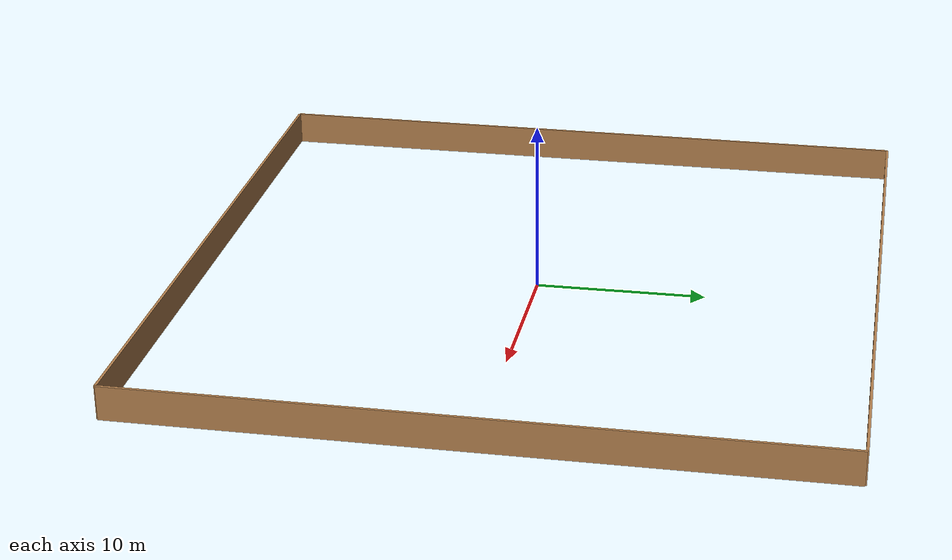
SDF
<?xml version='1.0'?>
<sdf version='1.6'>

  <model name='simple_room'>
    <pose>0 0 0 0 -0 0</pose>

    <link name='Wall_0'>
      <pose>0 -20 1 0 -0 0</pose>
      <collision name='Wall_0_Collision'>
        <geometry>
          <box>
            <size>40 0.15 2.0</size>
          </box>
        </geometry>
        <max_contacts>10</max_contacts>
        <surface>
          <contact>
            <ode/>
          </contact>
          <bounce/>
          <friction>
            <torsional>
              <ode/>
            </torsional>
            <ode/>
          </friction>
        </surface>
      </collision>
      <visual name='Wall_0_Visual'>
        <geometry>
          <box>
            <size>40 0.15 2.0</size>
          </box>
        </geometry>
        <material>
          <script>
            <uri>file://media/materials/scripts/gazebo.material</uri>
            <name>Gazebo/Wood</name>
          </script>
          <ambient>1 1 1 1</ambient>
        </material>
        <meta>
          <layer>0</layer>
        </meta>
      </visual>
      <self_collide>0</self_collide>
      <enable_wind>0</enable_wind>
      <kinematic>0</kinematic>
    </link>

    <link name='Wall_1'>
      <pose>20 -0 1 0 -0 1.5708</pose>
      <collision name='Wall_1_Collision'>
        <geometry>
          <box>
            <size>40 0.15 2.0</size>
          </box>
        </geometry>
        <max_contacts>10</max_contacts>
        <surface>
          <contact>
            <ode/>
          </contact>
          <bounce/>
          <friction>
            <torsional>
              <ode/>
            </torsional>
            <ode/>
          </friction>
        </surface>
      </collision>
      <visual name='Wall_1_Visual'>
        <geometry>
          <box>
            <size>40 0.15 2.0</size>
          </box>
        </geometry>
        <material>
          <script>
            <uri>file://media/materials/scripts/gazebo.material</uri>
            <name>Gazebo/Wood</name>
          </script>
          <ambient>1 1 1 1</ambient>
        </material>
        <meta>
          <layer>0</layer>
        </meta>
      </visual>
      <self_collide>0</self_collide>
      <enable_wind>0</enable_wind>
      <kinematic>0</kinematic>
    </link>

    <link name='Wall_2'>
      <pose>0 20 1 0 0 3.14159</pose>
      <collision name='Wall_2_Collision'>
        <geometry>
          <box>
            <size>40 0.15 2.0</size>
          </box>
        </geometry>
        <max_contacts>10</max_contacts>
        <surface>
          <contact>
            <ode/>
          </contact>
          <bounce/>
          <friction>
            <torsional>
              <ode/>
            </torsional>
            <ode/>
          </friction>
        </surface>
      </collision>
      <visual name='Wall_2_Visual'>
        <geometry>
          <box>
            <size>40 0.15 2.0</size>
          </box>
        </geometry>
        <material>
          <script>
            <uri>file://media/materials/scripts/gazebo.material</uri>
            <name>Gazebo/Wood</name>
          </script>
          <ambient>1 1 1 1</ambient>
        </material>
        <meta>
          <layer>0</layer>
        </meta>
      </visual>
      <self_collide>0</self_collide>
      <enable_wind>0</enable_wind>
      <kinematic>0</kinematic>
    </link>

    <link name='Wall_3'>
      <pose>-20 0 1 0 -0 -1.5708</pose>
      <collision name='Wall_3_Collision'>
        <geometry>
          <box>
            <size>40 0.15 2.0</size>
          </box>
        </geometry>
        <max_contacts>10</max_contacts>
        <surface>
          <contact>
            <ode/>
          </contact>
          <bounce/>
          <friction>
            <torsional>
              <ode/>
            </torsional>
            <ode/>
          </friction>
        </surface>
      </collision>
      <visual name='Wall_3_Visual'>
        <geometry>
          <box>
            <size>40 0.15 2.0</size>
          </box>
        </geometry>
        <material>
          <script>
            <uri>file://media/materials/scripts/gazebo.material</uri>
            <name>Gazebo/Wood</name>
          </script>
          <ambient>1 1 1 1</ambient>
        </material>
        <meta>
          <layer>0</layer>
        </meta>
      </visual>
      <self_collide>0</self_collide>
      <enable_wind>0</enable_wind>
      <kinematic>0</kinematic>
    </link>
    <static>1</static>
  </model>
</sdf>
